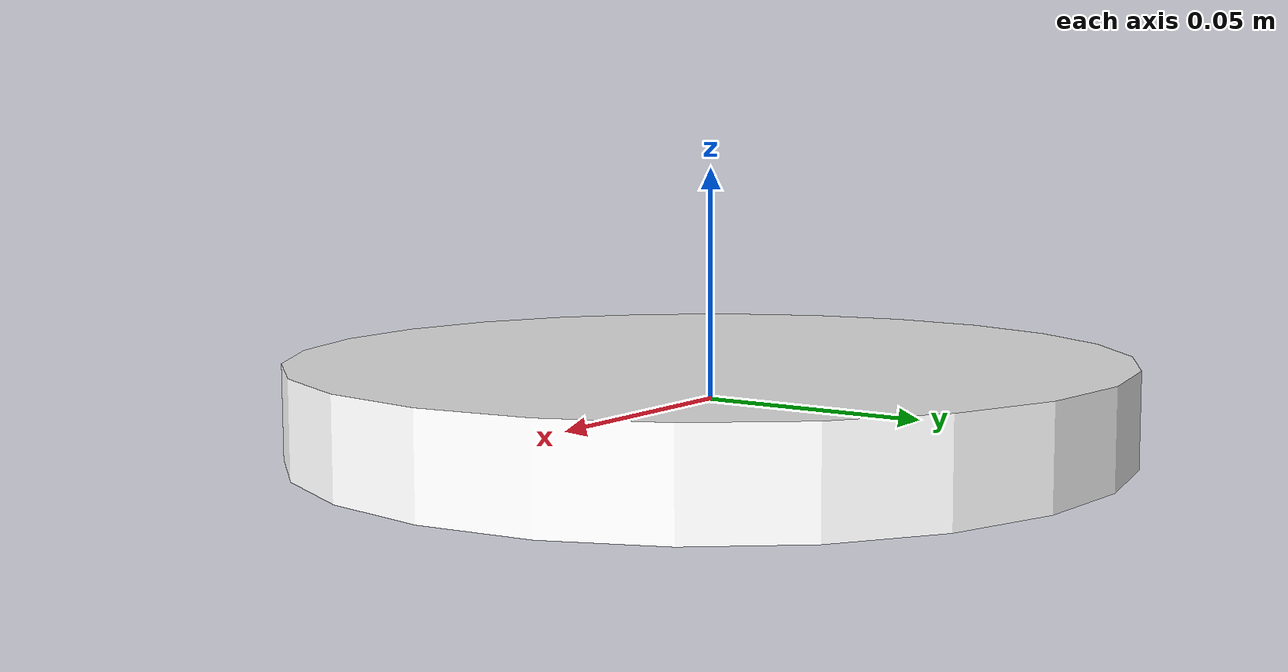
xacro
<?xml version="1.0"?>
<robot name="flying_disc" xmlns:xacro="http://ros.org/wiki/xacro">
  <xacro:arg name="prefix" default="" />
  <xacro:arg name="use_sim" default="false" />

  <xacro:arg name="robot_name" default="flying_disc"/>

  <xacro:include filename="$(find flying_disc_description)/urdf/common.xacro" />

  <!-- シュータ内部やステージ床の上を滑らせたいので低摩擦。
       combine="minimum" にしないと相手 (Unity 既定 0.6) と平均されてしまう。 -->
  <collision_material name="flying_disc">
    <friction static="0.2" dynamic="0.1" combine="minimum"/>
  </collision_material>

  <link name="base_link">
    <visual>
      <origin xyz="0 0 0" rpy="0 0 0" />
      <geometry>
        <cylinder length="0.02" radius="0.09"/>
      </geometry>
      <material name="white"/>
    </visual>
    <collision>
      <collision_material name="flying_disc"/>
      <geometry>
        <cylinder length="0.02" radius="0.09"/>
      </geometry>
    </collision>
    <inertial>
      <mass value="0.015"/>
      <inertia ixx="0.000024" ixy="0" ixz="0"
               iyy="0.000024" iyz="0"
               izz="0.000030"/>
    </inertial>
  </link>

</robot>

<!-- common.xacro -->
<robot xmlns:xacro="http://ros.org/wiki/xacro">
  <xacro:macro name="pi" params="3.1415926535897931" />

  <xacro:macro name="sample_robot_collision_materials">
    <!-- 車輪のバレル: 床をつかむ側。指定値を確実に効かせる -->
    <collision_material name="wheel_barrel">
      <friction static="1.0" dynamic="1.0" combine="maximum"/>
    </collision_material>
    <!-- 車体・バンパ・装甲 -->
    <collision_material name="robot_body">
      <friction static="1.0" dynamic="1.0" combine="maximum"/>
    </collision_material>
    <!-- シュータ内部: ディスクが引っ掛からないよう低摩擦にする -->
    <collision_material name="shooter_unit">
      <friction static="0.2" dynamic="0.0" combine="minimum"/>
    </collision_material>
  </xacro:macro>
  <material name="gray">
    <color rgba="0.6 0.6 0.6 1.0"/>
    <isaac_rigid_body static_friction="1.0" dynamic_friction="1.0"/>
  </material>
  <material name="black">
    <color rgba="0 0 0 1.0"/>
    <isaac_rigid_body static_friction="1.0" dynamic_friction="1.0"/>
  </material>
  <material name="white">
    <color rgba="1.0 1.0 1.0 1.0"/>
    <isaac_rigid_body static_friction="1.0" dynamic_friction="1.0"/>
  </material>
  <material name="shooter_unit">
    <color rgba="0.4 0.4 0.4 1.0"/>
    <isaac_rigid_body static_friction="0.2" dynamic_friction="0.0"/>
  </material>
  <material name="red">
    <color rgba="1.0 0 0 1.0"/>
    <isaac_rigid_body static_friction="1.0" dynamic_friction="1.0"/>
  </material>
  <material name="light_red">
    <color rgba="1.0 0.5 0.5 0.6"/>
    <isaac_rigid_body static_friction="1.0" dynamic_friction="1.0"/>
  </material>
  <material name="orange">
    <color rgba="1.0 0.5 0.0 1.0"/>
    <isaac_rigid_body static_friction="1.0" dynamic_friction="1.0"/>
  </material>
  <material name="yellow">
    <color rgba="1.0 1.0 0.0 1.0"/>
    <isaac_rigid_body static_friction="1.0" dynamic_friction="1.0"/>
  </material>
  <material name="yellow_green">
    <color rgba="0.5 1.0 0.0 1.0"/>
    <isaac_rigid_body static_friction="1.0" dynamic_friction="1.0"/>
  </material>

  <material name="blue">
    <color rgba="0.0 0.0 1.0 1.0"/>
    <isaac_rigid_body static_friction="1.0" dynamic_friction="1.0"/>
  </material>
  <material name="light_blue">
    <color rgba="0.5 0.5 1.0 0.6"/>
    <isaac_rigid_body static_friction="1.0" dynamic_friction="1.0"/>
  </material>
  <material name="purple">
    <color rgba="1.0 0.0 1.0 1.0"/>
    <isaac_rigid_body static_friction="1.0" dynamic_friction="1.0"/>
  </material>
  <material name="blue_green">
    <color rgba="0.0 1.0 0.5 1.0"/>
    <isaac_rigid_body static_friction="1.0" dynamic_friction="1.0"/>
  </material>

</robot>
